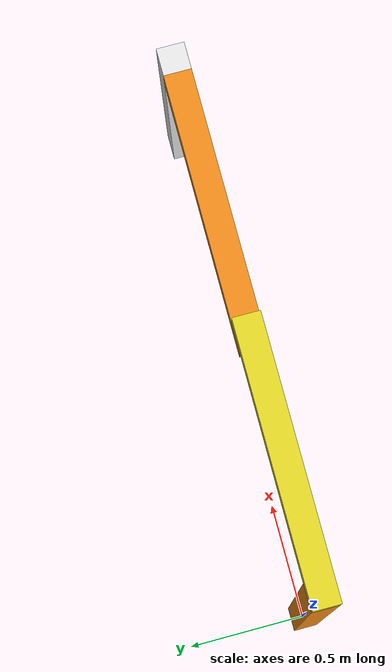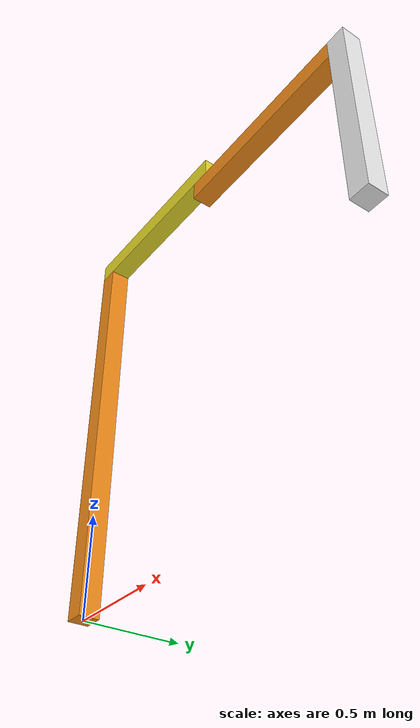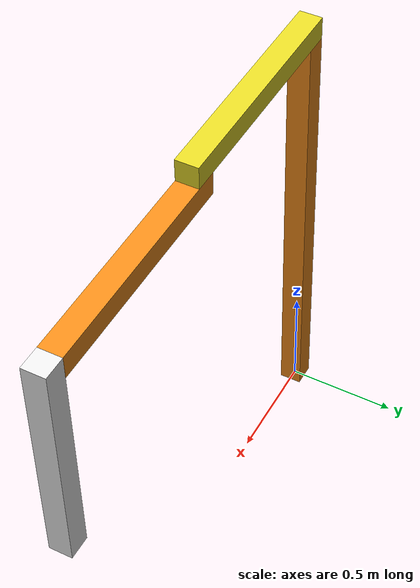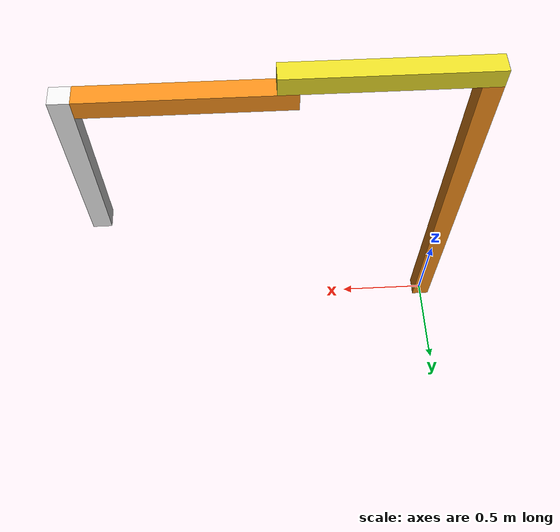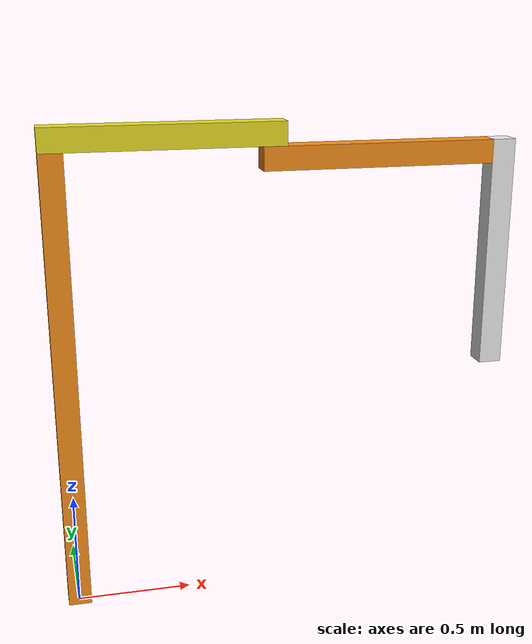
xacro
<?xml version="1.0"?>
<!-- Revolute-Revolute Manipulator -->
<!--
Copied and modified from ROS1 example -
https://github.com/ros-simulation/gazebo_ros_demos/blob/kinetic-devel/rrbot_description/urdf/rrbot.xacro
-->
<robot xmlns:xacro="http://www.ros.org/wiki/xacro" name="2dof_robot">
  <xacro:arg name="prefix" default="" />

  <!-- Import RRBot macro -->
  <xacro:include filename="$(find rrbot_description)/urdf/rrbot_description.urdf.xacro" />

  <!-- Import Rviz colors -->
  <xacro:include filename="$(find rrbot_description)/gazebo/rrbot.materials.xacro" />

  <!-- Import RRBot ros2_control description -->
  <xacro:include filename="$(find rrbot_description)/ros2_control/rrbot.ros2_control.xacro" />

  <xacro:include filename="$(find rrbot_description)/gazebo/rrbot.gazebo.xacro" />

  <!-- Used for fixing robot -->
  <link name="world"/>
  <gazebo reference="world">
    <static>true</static>
  </gazebo>

  <xacro:rrbot parent="world" prefix="$(arg prefix)">
    <origin xyz="0 0 0" rpy="0 0 0" />
  </xacro:rrbot>

  <xacro:rrbot_gazebo prefix="$(arg prefix)" />

  <xacro:rrbot_ros2_control
    name="RRBot" prefix="$(arg prefix)" />

</robot>

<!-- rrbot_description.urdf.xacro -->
<robot xmlns:xacro="http://www.ros.org/wiki/xacro">

  <xacro:macro name="rrbot" params="parent prefix *origin">

  <!-- Constants for robot dimensions -->
  <xacro:property name="mass" value="1" /> <!-- arbitrary value for mass -->
  <xacro:property name="width" value="0.1" /> <!-- Square dimensions (widthxwidth) of beams -->
  <xacro:property name="height1" value="2" /> <!-- Link 1 -->
  <xacro:property name="height2" value="1" /> <!-- Link 2 -->
  <xacro:property name="height3" value="1" /> <!-- Link 3 -->
  <xacro:property name="height4" value="0.9" /> <!-- range of prismatic motion -->
  <xacro:property name="camera_link" value="0.05" /> <!-- Size of square 'camera' box -->
  <xacro:property name="axel_offset" value="0.05" /> <!-- Space btw top of beam and the each joint -->

  <joint name="${prefix}base_joint" type="fixed">
    <xacro:insert_block name="origin" />
    <parent link="${parent}"/>
    <child link="${prefix}base_link" />
  </joint>

  <!-- Base Link -->
  <link name="${prefix}base_link">
    <collision>
      <origin xyz="0 0 ${height1/2}" rpy="0 0 0"/>
      <geometry>
        <box size="${width} ${width} ${height1}"/>
      </geometry>
    </collision>

    <visual>
      <origin xyz="0 0 ${height1/2}" rpy="0 0 0"/>
      <geometry>
        <box size="${width} ${width} ${height1}"/>
      </geometry>
      <material name="orange"/>
    </visual>

    <inertial>
      <origin xyz="0 0 ${height1/2}" rpy="0 0 0"/>
      <mass value="${mass}"/>
      <inertia
        ixx="${mass / 12.0 * (width*width + height1*height1)}" ixy="0.0" ixz="0.0"
        iyy="${mass / 12.0 * (height1*height1 + width*width)}" iyz="0.0"
        izz="${mass / 12.0 * (width*width + width*width)}"/>
      </inertial>
    </link>

    <joint name="${prefix}joint1" type="continuous">
      <parent link="${prefix}base_link"/>
      <child link="${prefix}link1"/>
      <origin xyz="0 0 ${height1 - axel_offset}" rpy="0 1.5708 0"/>
      <axis xyz="1 0 0"/>
      <dynamics damping="0.7"/>
    </joint>

    <!-- Middle Link -->
    <link name="${prefix}link1">
      <collision>
        <origin xyz="${-width} 0 ${height2/2 -axel_offset}" rpy="0 0 0"/>
        <geometry>
          <box size="${width} ${width} ${height2}"/>
        </geometry>
      </collision>

      <visual>
        <origin xyz="${-width} 0 ${height2/2 - axel_offset}" rpy="0 0 0"/>
        <geometry>
          <box size="${width} ${width} ${height2}"/>
        </geometry>
        <material name="yellow"/>
      </visual>

      <inertial>
        <origin xyz="${-width} 0 ${height2/2 - axel_offset}" rpy="0 0 0"/>
        <mass value="${mass}"/>
        <inertia
          ixx="${mass / 12.0 * (width*width + height2*height2)}" ixy="0.0" ixz="0.0"
          iyy="${mass / 12.0 * (height2*height2 + width*width)}" iyz="0.0"
          izz="${mass / 12.0 * (width*width + width*width)}"/>
        </inertial>
      </link>

      <joint name="${prefix}joint2" type="continuous">
        <parent link="${prefix}link1"/>
        <child link="${prefix}link2"/>
        <origin xyz="0 0 ${height2 - axel_offset*2}" rpy="0 0 0"/>
        <axis xyz="1 0 0"/>
        <dynamics damping="0.7"/>
      </joint>

      <!-- Top Link -->
      <link name="${prefix}link2">
        <collision>
          <origin xyz="0 0 ${height3/2 - axel_offset}" rpy="0 0 0"/>
          <geometry>
            <box size="${width} ${width} ${height3}"/>
          </geometry>
        </collision>

        <visual>
          <origin xyz="0 0 ${height3/2 - axel_offset}" rpy="0 0 0"/>
          <geometry>
            <box size="${width} ${width} ${height3}"/>
          </geometry>
          <material name="orange"/>
        </visual>

        <inertial>
          <origin xyz="0 0 ${height3/2 - axel_offset}" rpy="0 0 0"/>
          <mass value="${mass}"/>
          <inertia
            ixx="${mass / 12.0 * (width*width + height3*height3)}" ixy="0.0" ixz="0.0"
            iyy="${mass / 12.0 * (height3*height3 + width*width)}" iyz="0.0"
            izz="${mass / 12.0 * (width*width + width*width)}"/>
          </inertial>
        </link>

        <joint name="${prefix}joint3" type="prismatic">
          <origin xyz="0 0 1" rpy="0 1.5708 0" />
          <axis xyz="0 0 1" />
          <parent link="${prefix}link2"/>
          <child link="${prefix}link3" />
          <limit lower="-${height4-width}" upper="0" effort="1000" velocity="0.2"/>
        </joint>
        <link name="${prefix}link3">
        <collision>
          <origin xyz="0 0 ${height3/2 - axel_offset}" rpy="0 0 0"/>
          <geometry>
            <box size="${width} ${width} ${height3}"/>
          </geometry>
        </collision>

        <visual>
          <origin xyz="0 0 ${height3/2 - axel_offset}" rpy="0 0 0"/>
          <geometry>
            <box size="${width} ${width} ${height3}"/>
          </geometry>
          <material name="white"/>
        </visual>

        <inertial>
          <origin xyz="0 0 ${height3/2 - axel_offset}" rpy="0 0 0"/>
          <mass value="${mass}"/>
          <inertia
            ixx="${mass / 12.0 * (width*width + height3*height3)}" ixy="0.0" ixz="0.0"
            iyy="${mass / 12.0 * (height3*height3 + width*width)}" iyz="0.0"
            izz="${mass / 12.0 * (width*width + width*width)}"/>
          </inertial>
        </link>

  </xacro:macro>

</robot>
